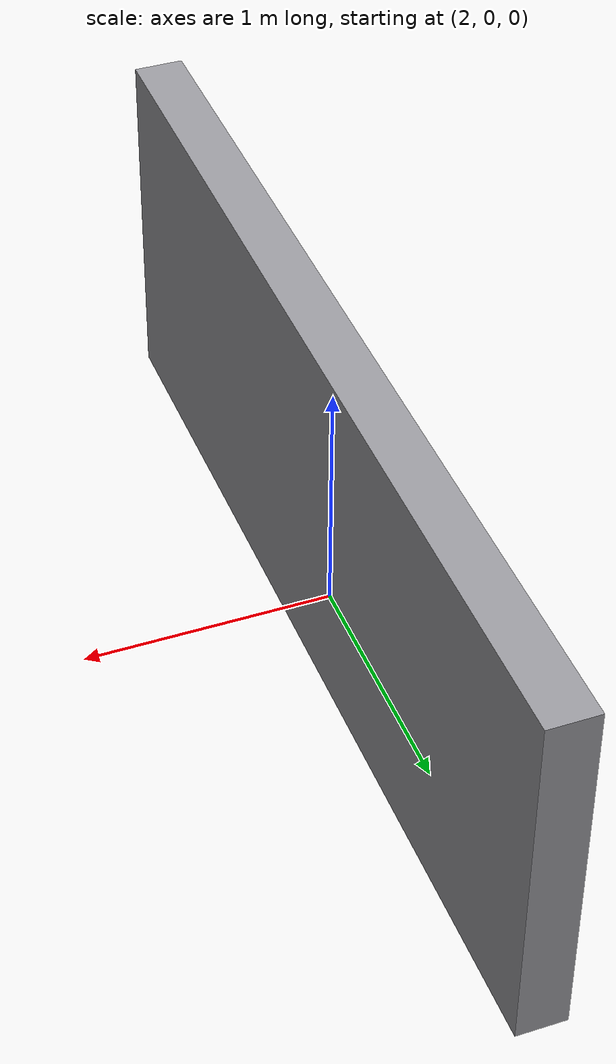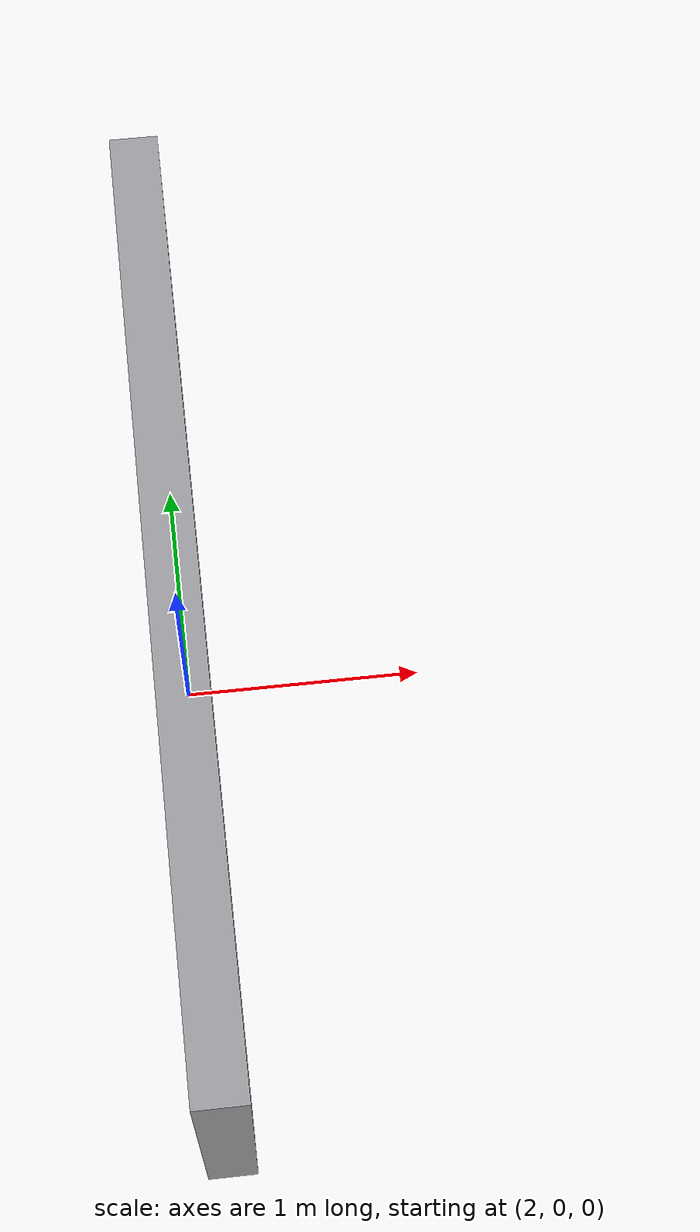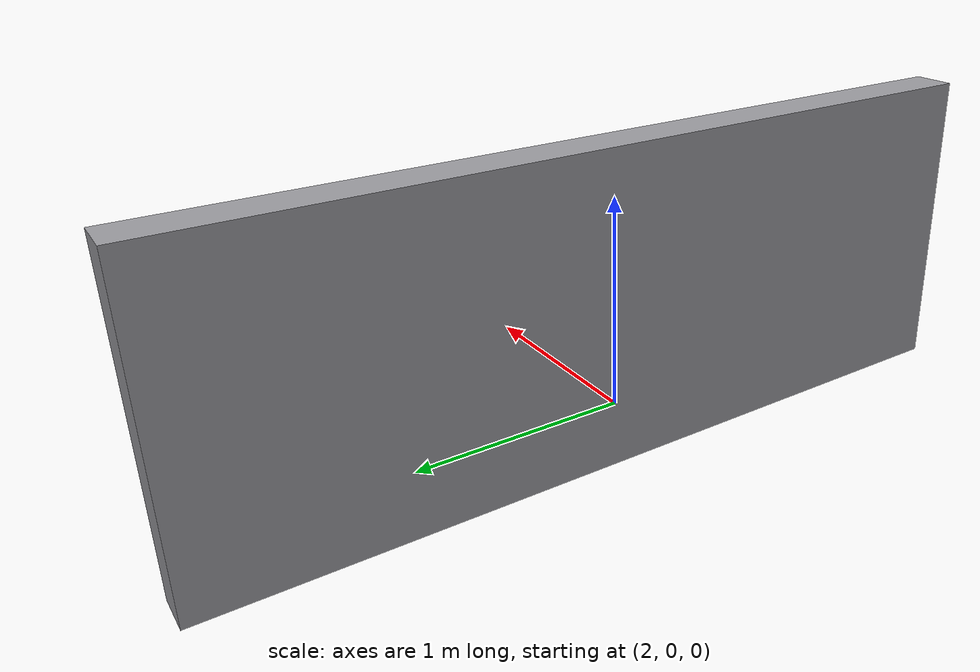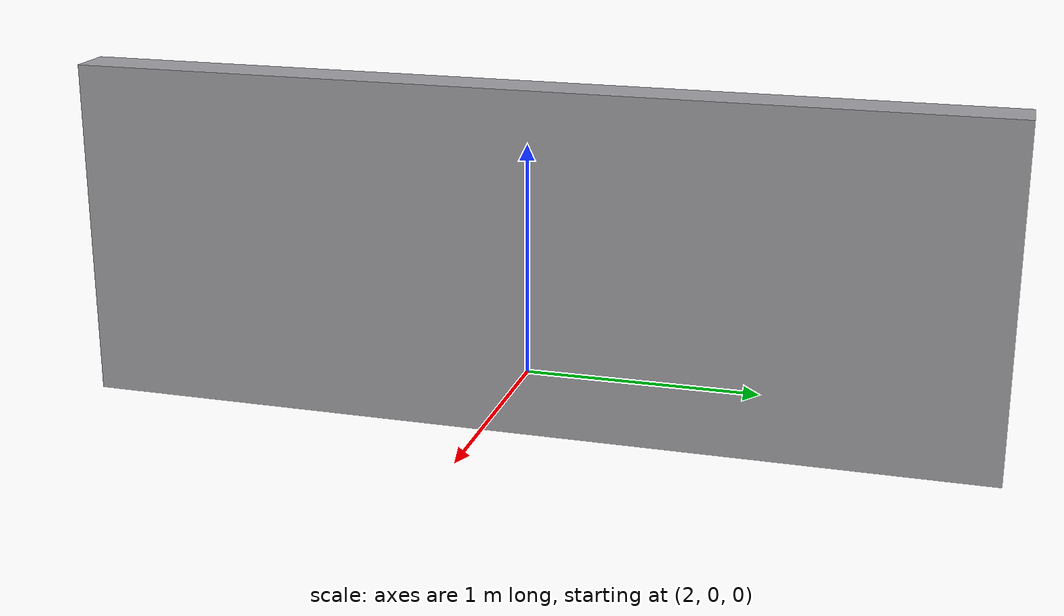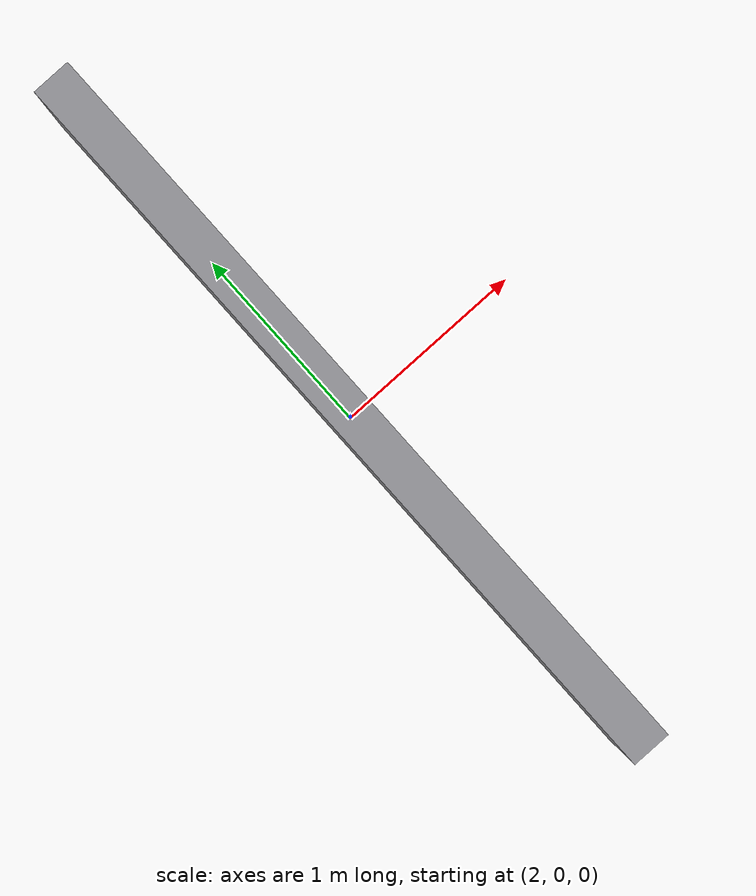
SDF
<?xml version="1.0" ?>
<!-- Same wall and pose as wall_perfect.sdf, plus Gaussian range noise. -->
<sdf version="1.9">
  <world name="wall_noisy">
    <physics name="1ms" type="ignored">
      <max_step_size>0.001</max_step_size>
      <real_time_factor>1.0</real_time_factor>
    </physics>
    <plugin filename="gz-sim-physics-system" name="gz::sim::systems::Physics"/>
    <plugin filename="gz-sim-sensors-system" name="gz::sim::systems::Sensors">
      <render_engine>ogre2</render_engine>
    </plugin>
    <plugin filename="gz-sim-scene-broadcaster-system" name="gz::sim::systems::SceneBroadcaster"/>

    <light type="directional" name="sun">
      <cast_shadows>false</cast_shadows>
      <pose>0 0 10 0 0 0</pose>
      <diffuse>0.8 0.8 0.8 1</diffuse>
      <direction>-0.3 0.2 -0.9</direction>
    </light>

    <model name="wall">
      <static>true</static>
      <pose>2.0 0 0.5 0 0 0</pose>
      <link name="link">
        <collision name="collision">
          <geometry><box><size>0.2 4.0 1.5</size></box></geometry>
        </collision>
        <visual name="visual">
          <geometry><box><size>0.2 4.0 1.5</size></box></geometry>
          <material>
            <ambient>0.6 0.6 0.62 1</ambient>
            <diffuse>0.6 0.6 0.62 1</diffuse>
          </material>
        </visual>
      </link>
    </model>

    <model name="lidar_rig">
      <static>true</static>
      <pose>0 0 0.5 0 0 0</pose>
      <link name="link">
        <sensor name="gpu_lidar" type="gpu_lidar">
          <topic>lidar</topic>
          <update_rate>5</update_rate>
          <always_on>1</always_on>
          <visualize>false</visualize>
          <lidar>
            <scan>
              <horizontal>
                <samples>32</samples>
                <resolution>1</resolution>
                <min_angle>-0.5</min_angle>
                <max_angle>0.5</max_angle>
              </horizontal>
              <vertical>
                <samples>1</samples>
                <resolution>1</resolution>
                <min_angle>0</min_angle>
                <max_angle>0</max_angle>
              </vertical>
            </scan>
            <range>
              <min>0.08</min>
              <max>10.0</max>
              <resolution>0.01</resolution>
            </range>
            <noise>
              <type>gaussian</type>
              <mean>0.0</mean>
              <stddev>0.05</stddev>
            </noise>
          </lidar>
        </sensor>
      </link>
    </model>
  </world>
</sdf>
